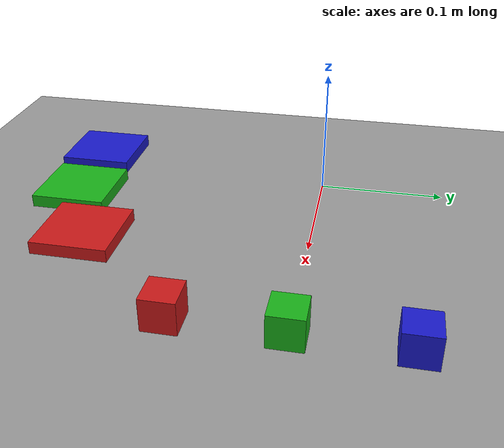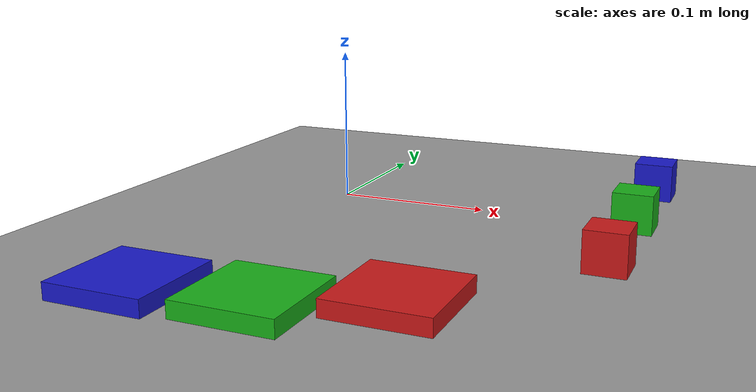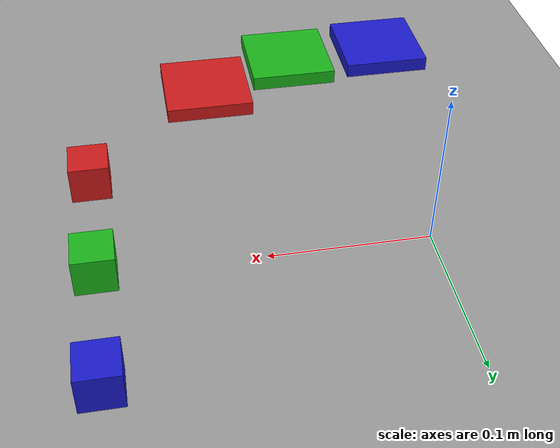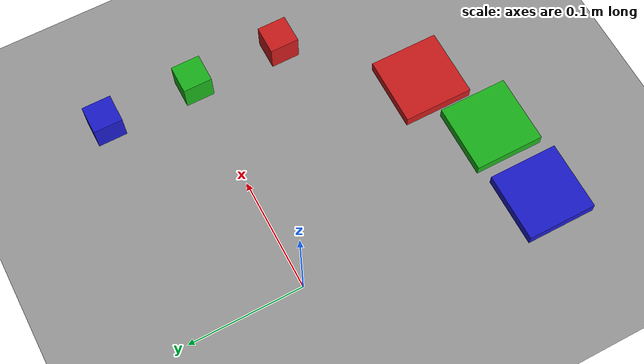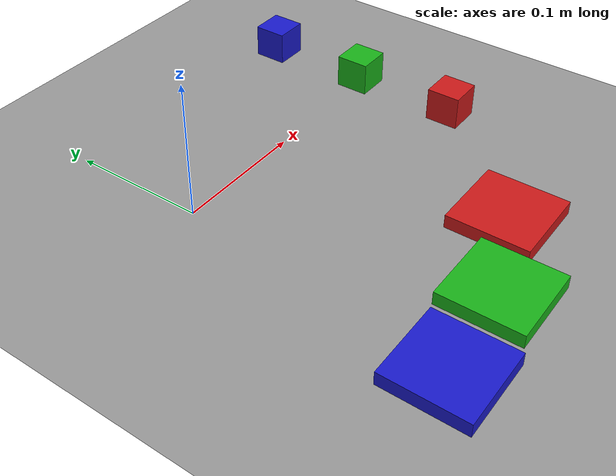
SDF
<?xml version="1.0" ?>
<sdf version="1.8">
  <world name="default">
    <!-- Plugins -->
    <plugin filename="gz-sim-physics-system" name="gz::sim::systems::Physics">
    </plugin>
    <plugin filename="gz-sim-user-commands-system" name="gz::sim::systems::UserCommands">
    </plugin>
    <plugin filename="gz-sim-scene-broadcaster-system" name="gz::sim::systems::SceneBroadcaster">
    </plugin>
    <plugin filename="gz-sim-sensors-system" name="gz::sim::systems::Sensors">
      <render_engine>ogre2</render_engine>
    </plugin>
    <plugin filename="libgz_link_attacher.so" name="gz_link_attacher::LinkAttacher">
      <robot_model_name>dobot_magician_gripper</robot_model_name>
      <gripper_link_name>link_gripper_jaw_left</gripper_link_name>
    </plugin>

    <plugin filename="gz-sim-contact-system" name="gz::sim::systems::Contact">
    </plugin>

    <!-- Scene -->
    <scene>
      <ambient>0.4 0.4 0.4 1</ambient>
      <background>0.7 0.7 0.7 1</background>
      <shadows>true</shadows>
      <grid>false</grid>
    </scene>

    <!-- Light -->
    <light type="directional" name="sun">
      <cast_shadows>true</cast_shadows>
      <pose>0 0 3 0 0 0</pose>
      <diffuse>0.8 0.8 0.8 1</diffuse>
      <specular>0.2 0.2 0.2 1</specular>
      <direction>-0.5 0.1 -0.9</direction>
    </light>

    <!-- Ground plane, the robot sits directly on top of it -->
    <model name="ground_plane">
      <static>true</static>
      <link name="link">
        <collision name="collision">
          <geometry>
            <plane>
              <normal>0 0 1</normal>
            </plane>
          </geometry>
        </collision>
        <visual name="visual">
          <geometry>
            <plane>
              <normal>0 0 1</normal>
              <size>2 2</size>
            </plane>
          </geometry>
          <material>
            <ambient>0.6 0.6 0.6 1</ambient>
            <diffuse>0.6 0.6 0.6 1</diffuse>
          </material>
        </visual>
      </link>
    </model>

    <!-- Small pick objects, sized for the Dobot's 320mm reach and its
         13.5mm gripper travel, placed within reach in front of the base. -->
    <model name="red_cube">
      <pose>0.2 -0.08 0.0125 0 0 0</pose>
      <link name="link">
        <inertial>
          <mass>0.01</mass>
          <inertia>
            <ixx>0.0000017</ixx>
            <iyy>0.0000017</iyy>
            <izz>0.0000017</izz>
            <ixy>0</ixy>
            <ixz>0</ixz>
            <iyz>0</iyz>
          </inertia>
        </inertial>
        <collision name="collision">
          <geometry>
            <box>
              <size>0.025 0.025 0.025</size>
            </box>
          </geometry>
        </collision>
        <visual name="visual">
          <geometry>
            <box>
              <size>0.025 0.025 0.025</size>
            </box>
          </geometry>
          <material>
            <ambient>0.8 0.1 0.1 1</ambient>
            <diffuse>0.8 0.1 0.1 1</diffuse>
          </material>
        </visual>
      </link>
    </model>

    <model name="green_cube">
      <pose>0.2 0 0.0125 0 0 0</pose>
      <link name="link">
        <inertial>
          <mass>0.01</mass>
          <inertia>
            <ixx>0.0000017</ixx>
            <iyy>0.0000017</iyy>
            <izz>0.0000017</izz>
            <ixy>0</ixy>
            <ixz>0</ixz>
            <iyz>0</iyz>
          </inertia>
        </inertial>
        <collision name="collision">
          <geometry>
            <box>
              <size>0.025 0.025 0.025</size>
            </box>
          </geometry>
        </collision>
        <visual name="visual">
          <geometry>
            <box>
              <size>0.025 0.025 0.025</size>
            </box>
          </geometry>
          <material>
            <ambient>0.1 0.7 0.1 1</ambient>
            <diffuse>0.1 0.7 0.1 1</diffuse>
          </material>
        </visual>
      </link>
    </model>

    <model name="blue_cube">
      <pose>0.2 0.08 0.0125 0 0 0</pose>
      <link name="link">
        <inertial>
          <mass>0.01</mass>
          <inertia>
            <ixx>0.0000017</ixx>
            <iyy>0.0000017</iyy>
            <izz>0.0000017</izz>
            <ixy>0</ixy>
            <ixz>0</ixz>
            <iyz>0</iyz>
          </inertia>
        </inertial>
        <collision name="collision">
          <geometry>
            <box>
              <size>0.025 0.025 0.025</size>
            </box>
          </geometry>
        </collision>
        <visual name="visual">
          <geometry>
            <box>
              <size>0.025 0.025 0.025</size>
            </box>
          </geometry>
          <material>
            <ambient>0.1 0.1 0.8 1</ambient>
            <diffuse>0.1 0.1 0.8 1</diffuse>
          </material>
        </visual>
      </link>
    </model>

    <!-- One flat mat per cube color, each cube goes to its own -->
    <model name="red_mat">
      <static>true</static>
      <pose>0.1152 -0.1708 0.005 0 0 0</pose>
      <link name="link">
        <collision name="collision">
          <geometry>
            <box>
              <size>0.06 0.06 0.01</size>
            </box>
          </geometry>
        </collision>
        <visual name="visual">
          <geometry>
            <box>
              <size>0.06 0.06 0.01</size>
            </box>
          </geometry>
          <material>
            <ambient>0.8 0.1 0.1 1</ambient>
            <diffuse>0.8 0.1 0.1 1</diffuse>
          </material>
        </visual>
      </link>
    </model>

    <model name="green_mat">
      <static>true</static>
      <pose>0.0499 -0.1999 0.005 0 0 0</pose>
      <link name="link">
        <collision name="collision">
          <geometry>
            <box>
              <size>0.06 0.06 0.01</size>
            </box>
          </geometry>
        </collision>
        <visual name="visual">
          <geometry>
            <box>
              <size>0.06 0.06 0.01</size>
            </box>
          </geometry>
          <material>
            <ambient>0.1 0.7 0.1 1</ambient>
            <diffuse>0.1 0.7 0.1 1</diffuse>
          </material>
        </visual>
      </link>
    </model>

    <model name="blue_mat">
      <static>true</static>
      <pose>-0.0216 -0.2049 0.005 0 0 0</pose>
      <link name="link">
        <collision name="collision">
          <geometry>
            <box>
              <size>0.06 0.06 0.01</size>
            </box>
          </geometry>
        </collision>
        <visual name="visual">
          <geometry>
            <box>
              <size>0.06 0.06 0.01</size>
            </box>
          </geometry>
          <material>
            <ambient>0.1 0.1 0.8 1</ambient>
            <diffuse>0.1 0.1 0.8 1</diffuse>
          </material>
        </visual>
      </link>
    </model>

  </world>
</sdf>
